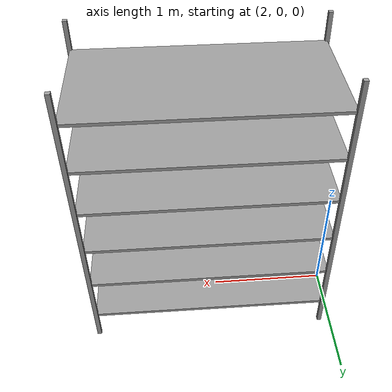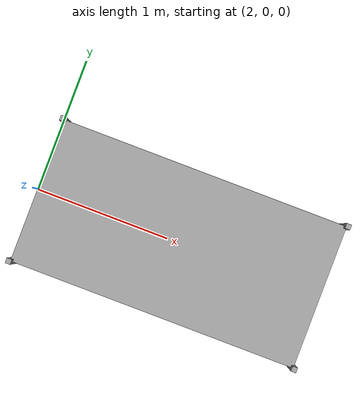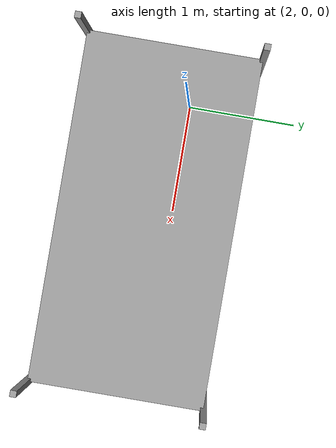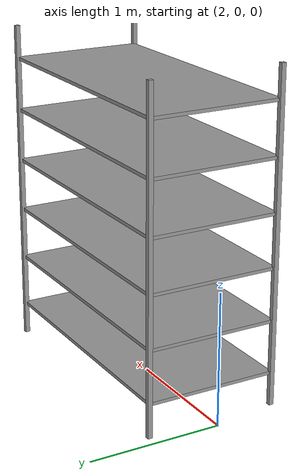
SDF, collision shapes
<sdf version="1.6">
 <model name="shelves">
  <model name="shelf_4">
   <link name="link_1">
    <inertial>
     <mass>1</mass>
     <inertia>
      <ixx>0.166667</ixx>
      <ixy>0</ixy>
      <ixz>0</ixz>
      <iyy>0.166667</iyy>
      <iyz>0</iyz>
      <izz>0.166667</izz>
     </inertia>
    </inertial>
    <visual name="ModelPreview_2::link_1::visual_6">
     <pose>1 0.5 0 0 -0 0</pose>
     <geometry><mesh><uri>model://shelf/model/2-5mDirek.stl</uri><scale>0.001 0.001 0.001</scale></mesh></geometry>
     <material>
      <lighting>1</lighting>
      <script><uri>file://media/materials/scripts/gazebo.material</uri><name>Gazebo/Grey</name></script>
      <shader type="vertex"><normal_map>__default__</normal_map></shader>
      <ambient>0.3 0.3 0.3 1</ambient>
      <diffuse>0.7 0.7 0.7 1</diffuse>
      <specular>0.01 0.01 0.01 1</specular>
      <emissive>0 0 0 1</emissive>
     </material>
    </visual>
    <visual name="ModelPreview_2::link_1::visual_7">
     <pose>-1 0.5 0 0 -0 0</pose>
     <geometry><mesh><uri>model://shelf/model/2-5mDirek.stl</uri><scale>0.001 0.001 0.001</scale></mesh></geometry>
     <material>
      <lighting>1</lighting>
      <script><uri>file://media/materials/scripts/gazebo.material</uri><name>Gazebo/Grey</name></script>
      <shader type="vertex"><normal_map>__default__</normal_map></shader>
      <ambient>0.3 0.3 0.3 1</ambient>
      <diffuse>0.7 0.7 0.7 1</diffuse>
      <specular>0.01 0.01 0.01 1</specular>
      <emissive>0 0 0 1</emissive>
     </material>
    </visual>
    <visual name="ModelPreview_2::link_1::visual_4">
     <pose>0 0 1.85 0 -0 0</pose>
     <geometry><box><size>2 1 0.025</size></box></geometry>
     <material>
      <lighting>1</lighting>
      <script><uri>file://media/materials/scripts/gazebo.material</uri><name>Gazebo/WoodFloor</name></script>
      <shader type="vertex"><normal_map>__default__</normal_map></shader>
      <ambient>0.3 0.3 0.3 1</ambient>
      <diffuse>0.7 0.7 0.7 1</diffuse>
      <specular>0.01 0.01 0.01 1</specular>
      <emissive>0 0 0 1</emissive>
     </material>
    </visual>
    <visual name="ModelPreview_2::link_1::visual_5">
     <pose>0 0 2.25 0 -0 0</pose>
     <geometry><box><size>2 1 0.025</size></box></geometry>
     <material>
      <lighting>1</lighting>
      <script><uri>file://media/materials/scripts/gazebo.material</uri><name>Gazebo/WoodFloor</name></script>
      <shader type="vertex"><normal_map>__default__</normal_map></shader>
      <ambient>0.3 0.3 0.3 1</ambient>
      <diffuse>0.7 0.7 0.7 1</diffuse>
      <specular>0.01 0.01 0.01 1</specular>
      <emissive>0 0 0 1</emissive>
     </material>
    </visual>
    <visual name="ModelPreview_2::link_1::visual_3">
     <pose>0 0 1.45 0 -0 0</pose>
     <geometry><box><size>2 1 0.025</size></box></geometry>
     <material>
      <lighting>1</lighting>
      <script><uri>file://media/materials/scripts/gazebo.material</uri><name>Gazebo/WoodFloor</name></script>
      <shader type="vertex"><normal_map>__default__</normal_map></shader>
      <ambient>0.3 0.3 0.3 1</ambient>
      <diffuse>0.7 0.7 0.7 1</diffuse>
      <specular>0.01 0.01 0.01 1</specular>
      <emissive>0 0 0 1</emissive>
     </material>
    </visual>
    <visual name="ModelPreview_2::link_1::visual_1">
     <pose>0 0 0.65 0 -0 0</pose>
     <geometry><box><size>2 1 0.025</size></box></geometry>
     <material>
      <lighting>1</lighting>
      <script><uri>file://media/materials/scripts/gazebo.material</uri><name>Gazebo/WoodFloor</name></script>
      <shader type="vertex"><normal_map>__default__</normal_map></shader>
      <ambient>0.3 0.3 0.3 1</ambient>
      <diffuse>0.7 0.7 0.7 1</diffuse>
      <specular>0.01 0.01 0.01 1</specular>
      <emissive>0 0 0 1</emissive>
     </material>
    </visual>
    <visual name="visual">
     <pose>0 0 0.25 0 -0 0</pose>
     <geometry><box><size>2 1 0.025</size></box></geometry>
     <material>
      <lighting>1</lighting>
      <script><uri>file://media/materials/scripts/gazebo.material</uri><name>Gazebo/WoodFloor</name></script>
      <shader type="vertex"><normal_map>__default__</normal_map></shader>
      <ambient>0.3 0.3 0.3 1</ambient>
      <diffuse>0.7 0.7 0.7 1</diffuse>
      <specular>0.01 0.01 0.01 1</specular>
      <emissive>0 0 0 1</emissive>
     </material>
    </visual>
    <visual name="ModelPreview_2::link_1::visual_2">
     <pose>0 0 1.05 0 -0 0</pose>
     <geometry><box><size>2 1 0.025</size></box></geometry>
     <material>
      <lighting>1</lighting>
      <script><uri>file://media/materials/scripts/gazebo.material</uri><name>Gazebo/WoodFloor</name></script>
      <shader type="vertex"><normal_map>__default__</normal_map></shader>
      <ambient>0.3 0.3 0.3 1</ambient>
      <diffuse>0.7 0.7 0.7 1</diffuse>
      <specular>0.01 0.01 0.01 1</specular>
      <emissive>0 0 0 1</emissive>
     </material>
    </visual>
    <visual name="ModelPreview_2::link_1::visual_8">
     <pose>1 -0.5 0 0 -0 0</pose>
     <geometry><mesh><uri>model://shelf/model/2-5mDirek.stl</uri><scale>0.001 0.001 0.001</scale></mesh></geometry>
     <material>
      <lighting>1</lighting>
      <script><uri>file://media/materials/scripts/gazebo.material</uri><name>Gazebo/Grey</name></script>
      <shader type="vertex"><normal_map>__default__</normal_map></shader>
      <ambient>0.3 0.3 0.3 1</ambient>
      <diffuse>0.7 0.7 0.7 1</diffuse>
      <specular>0.01 0.01 0.01 1</specular>
      <emissive>0 0 0 1</emissive>
     </material>
    </visual>
    <visual name="ModelPreview_2::link_1::visual_9">
     <pose>-1 -0.5 0 0 -0 0</pose>
     <geometry><mesh><uri>model://shelf/model/2-5mDirek.stl</uri><scale>0.001 0.001 0.001</scale></mesh></geometry>
     <material>
      <lighting>1</lighting>
      <script><uri>file://media/materials/scripts/gazebo.material</uri><name>Gazebo/Grey</name></script>
      <shader type="vertex"><normal_map>__default__</normal_map></shader>
      <ambient>0.3 0.3 0.3 1</ambient>
      <diffuse>0.7 0.7 0.7 1</diffuse>
      <specular>0.01 0.01 0.01 1</specular>
      <emissive>0 0 0 1</emissive>
     </material>
    </visual>
    <collision name="collision_7">
     <pose>1 -0.5 1.25 0 -0 0</pose>
     <geometry><box><size>0.035 0.035 2.5</size></box></geometry>
     <surface>
      <friction>
       <ode><mu>1</mu><mu2>1</mu2><fdir1>0 0 0</fdir1><slip1>0</slip1><slip2>0</slip2></ode>
       <torsional>
        <coefficient>1</coefficient>
        <patch_radius>0</patch_radius>
        <surface_radius>0</surface_radius>
        <use_patch_radius>1</use_patch_radius>
        <ode><slip>0</slip></ode>
       </torsional>
      </friction>
      <bounce><restitution_coefficient>0</restitution_coefficient><threshold>1e+06</threshold></bounce>
      <contact>
       <collide_without_contact>0</collide_without_contact>
       <collide_without_contact_bitmask>1</collide_without_contact_bitmask>
       <collide_bitmask>1</collide_bitmask>
       <ode>
        <soft_cfm>0</soft_cfm>
        <soft_erp>0.2</soft_erp>
        <kp>1e+13</kp>
        <kd>1</kd>
        <max_vel>0.01</max_vel>
        <min_depth>0</min_depth>
       </ode>
       <bullet>
        <split_impulse>1</split_impulse>
        <split_impulse_penetration_threshold>-0.01</split_impulse_penetration_threshold>
        <soft_cfm>0</soft_cfm>
        <soft_erp>0.2</soft_erp>
        <kp>1e+13</kp>
        <kd>1</kd>
       </bullet>
      </contact>
     </surface>
    </collision>
    <collision name="collision_6">
     <pose>1 0.5 1.25 0 -0 0</pose>
     <geometry><box><size>0.035 0.035 2.5</size></box></geometry>
     <surface>
      <friction>
       <ode><mu>1</mu><mu2>1</mu2><fdir1>0 0 0</fdir1><slip1>0</slip1><slip2>0</slip2></ode>
       <torsional>
        <coefficient>1</coefficient>
        <patch_radius>0</patch_radius>
        <surface_radius>0</surface_radius>
        <use_patch_radius>1</use_patch_radius>
        <ode><slip>0</slip></ode>
       </torsional>
      </friction>
      <bounce><restitution_coefficient>0</restitution_coefficient><threshold>1e+06</threshold></bounce>
      <contact>
       <collide_without_contact>0</collide_without_contact>
       <collide_without_contact_bitmask>1</collide_without_contact_bitmask>
       <collide_bitmask>1</collide_bitmask>
       <ode>
        <soft_cfm>0</soft_cfm>
        <soft_erp>0.2</soft_erp>
        <kp>1e+13</kp>
        <kd>1</kd>
        <max_vel>0.01</max_vel>
        <min_depth>0</min_depth>
       </ode>
       <bullet>
        <split_impulse>1</split_impulse>
        <split_impulse_penetration_threshold>-0.01</split_impulse_penetration_threshold>
        <soft_cfm>0</soft_cfm>
        <soft_erp>0.2</soft_erp>
        <kp>1e+13</kp>
        <kd>1</kd>
       </bullet>
      </contact>
     </surface>
    </collision>
    <collision name="collision_2">
     <pose>0 0 1.05 0 -0 0</pose>
     <geometry><box><size>2 1 0.025</size></box></geometry>
     <surface>
      <friction>
       <ode><mu>1</mu><mu2>1</mu2><fdir1>0 0 0</fdir1><slip1>0</slip1><slip2>0</slip2></ode>
       <torsional>
        <coefficient>1</coefficient>
        <patch_radius>0</patch_radius>
        <surface_radius>0</surface_radius>
        <use_patch_radius>1</use_patch_radius>
        <ode><slip>0</slip></ode>
       </torsional>
      </friction>
      <bounce><restitution_coefficient>0</restitution_coefficient><threshold>1e+06</threshold></bounce>
      <contact>
       <collide_without_contact>0</collide_without_contact>
       <collide_without_contact_bitmask>1</collide_without_contact_bitmask>
       <collide_bitmask>1</collide_bitmask>
       <ode>
        <soft_cfm>0</soft_cfm>
        <soft_erp>0.2</soft_erp>
        <kp>1e+13</kp>
        <kd>1</kd>
        <max_vel>0.01</max_vel>
        <min_depth>0</min_depth>
       </ode>
       <bullet>
        <split_impulse>1</split_impulse>
        <split_impulse_penetration_threshold>-0.01</split_impulse_penetration_threshold>
        <soft_cfm>0</soft_cfm>
        <soft_erp>0.2</soft_erp>
        <kp>1e+13</kp>
        <kd>1</kd>
       </bullet>
      </contact>
     </surface>
    </collision>
    <collision name="collision_8">
     <pose>-1 0.5 1.25 0 -0 0</pose>
     <geometry><box><size>0.035 0.035 2.5</size></box></geometry>
     <surface>
      <friction>
       <ode><mu>1</mu><mu2>1</mu2><fdir1>0 0 0</fdir1><slip1>0</slip1><slip2>0</slip2></ode>
       <torsional>
        <coefficient>1</coefficient>
        <patch_radius>0</patch_radius>
        <surface_radius>0</surface_radius>
        <use_patch_radius>1</use_patch_radius>
        <ode><slip>0</slip></ode>
       </torsional>
      </friction>
      <bounce><restitution_coefficient>0</restitution_coefficient><threshold>1e+06</threshold></bounce>
      <contact>
       <collide_without_contact>0</collide_without_contact>
       <collide_without_contact_bitmask>1</collide_without_contact_bitmask>
       <collide_bitmask>1</collide_bitmask>
       <ode>
        <soft_cfm>0</soft_cfm>
        <soft_erp>0.2</soft_erp>
        <kp>1e+13</kp>
        <kd>1</kd>
        <max_vel>0.01</max_vel>
        <min_depth>0</min_depth>
       </ode>
       <bullet>
        <split_impulse>1</split_impulse>
        <split_impulse_penetration_threshold>-0.01</split_impulse_penetration_threshold>
        <soft_cfm>0</soft_cfm>
        <soft_erp>0.2</soft_erp>
        <kp>1e+13</kp>
        <kd>1</kd>
       </bullet>
      </contact>
     </surface>
    </collision>
    <collision name="collision_4">
     <pose>0 0 1.85 0 -0 0</pose>
     <geometry><box><size>2 1 0.025</size></box></geometry>
     <surface>
      <friction>
       <ode><mu>1</mu><mu2>1</mu2><fdir1>0 0 0</fdir1><slip1>0</slip1><slip2>0</slip2></ode>
       <torsional>
        <coefficient>1</coefficient>
        <patch_radius>0</patch_radius>
        <surface_radius>0</surface_radius>
        <use_patch_radius>1</use_patch_radius>
        <ode><slip>0</slip></ode>
       </torsional>
      </friction>
      <bounce><restitution_coefficient>0</restitution_coefficient><threshold>1e+06</threshold></bounce>
      <contact>
       <collide_without_contact>0</collide_without_contact>
       <collide_without_contact_bitmask>1</collide_without_contact_bitmask>
       <collide_bitmask>1</collide_bitmask>
       <ode>
        <soft_cfm>0</soft_cfm>
        <soft_erp>0.2</soft_erp>
        <kp>1e+13</kp>
        <kd>1</kd>
        <max_vel>0.01</max_vel>
        <min_depth>0</min_depth>
       </ode>
       <bullet>
        <split_impulse>1</split_impulse>
        <split_impulse_penetration_threshold>-0.01</split_impulse_penetration_threshold>
        <soft_cfm>0</soft_cfm>
        <soft_erp>0.2</soft_erp>
        <kp>1e+13</kp>
        <kd>1</kd>
       </bullet>
      </contact>
     </surface>
    </collision>
    <collision name="collision_1">
     <pose>0 0 0.65 0 -0 0</pose>
     <geometry><box><size>2 1 0.025</size></box></geometry>
     <surface>
      <friction>
       <ode><mu>1</mu><mu2>1</mu2><fdir1>0 0 0</fdir1><slip1>0</slip1><slip2>0</slip2></ode>
       <torsional>
        <coefficient>1</coefficient>
        <patch_radius>0</patch_radius>
        <surface_radius>0</surface_radius>
        <use_patch_radius>1</use_patch_radius>
        <ode><slip>0</slip></ode>
       </torsional>
      </friction>
      <bounce><restitution_coefficient>0</restitution_coefficient><threshold>1e+06</threshold></bounce>
      <contact>
       <collide_without_contact>0</collide_without_contact>
       <collide_without_contact_bitmask>1</collide_without_contact_bitmask>
       <collide_bitmask>1</collide_bitmask>
       <ode>
        <soft_cfm>0</soft_cfm>
        <soft_erp>0.2</soft_erp>
        <kp>1e+13</kp>
        <kd>1</kd>
        <max_vel>0.01</max_vel>
        <min_depth>0</min_depth>
       </ode>
       <bullet>
        <split_impulse>1</split_impulse>
        <split_impulse_penetration_threshold>-0.01</split_impulse_penetration_threshold>
        <soft_cfm>0</soft_cfm>
        <soft_erp>0.2</soft_erp>
        <kp>1e+13</kp>
        <kd>1</kd>
       </bullet>
      </contact>
     </surface>
    </collision>
    <collision name="collision_3">
     <pose>0 0 1.45 0 -0 0</pose>
     <geometry><box><size>2 1 0.025</size></box></geometry>
     <surface>
      <friction>
       <ode><mu>1</mu><mu2>1</mu2><fdir1>0 0 0</fdir1><slip1>0</slip1><slip2>0</slip2></ode>
       <torsional>
        <coefficient>1</coefficient>
        <patch_radius>0</patch_radius>
        <surface_radius>0</surface_radius>
        <use_patch_radius>1</use_patch_radius>
        <ode><slip>0</slip></ode>
       </torsional>
      </friction>
      <bounce><restitution_coefficient>0</restitution_coefficient><threshold>1e+06</threshold></bounce>
      <contact>
       <collide_without_contact>0</collide_without_contact>
       <collide_without_contact_bitmask>1</collide_without_contact_bitmask>
       <collide_bitmask>1</collide_bitmask>
       <ode>
        <soft_cfm>0</soft_cfm>
        <soft_erp>0.2</soft_erp>
        <kp>1e+13</kp>
        <kd>1</kd>
        <max_vel>0.01</max_vel>
        <min_depth>0</min_depth>
       </ode>
       <bullet>
        <split_impulse>1</split_impulse>
        <split_impulse_penetration_threshold>-0.01</split_impulse_penetration_threshold>
        <soft_cfm>0</soft_cfm>
        <soft_erp>0.2</soft_erp>
        <kp>1e+13</kp>
        <kd>1</kd>
       </bullet>
      </contact>
     </surface>
    </collision>
    <collision name="collision_5">
     <pose>0 0 2.25 0 -0 0</pose>
     <geometry><box><size>2 1 0.025</size></box></geometry>
     <surface>
      <friction>
       <ode><mu>1</mu><mu2>1</mu2><fdir1>0 0 0</fdir1><slip1>0</slip1><slip2>0</slip2></ode>
       <torsional>
        <coefficient>1</coefficient>
        <patch_radius>0</patch_radius>
        <surface_radius>0</surface_radius>
        <use_patch_radius>1</use_patch_radius>
        <ode><slip>0</slip></ode>
       </torsional>
      </friction>
      <bounce><restitution_coefficient>0</restitution_coefficient><threshold>1e+06</threshold></bounce>
      <contact>
       <collide_without_contact>0</collide_without_contact>
       <collide_without_contact_bitmask>1</collide_without_contact_bitmask>
       <collide_bitmask>1</collide_bitmask>
       <ode>
        <soft_cfm>0</soft_cfm>
        <soft_erp>0.2</soft_erp>
        <kp>1e+13</kp>
        <kd>1</kd>
        <max_vel>0.01</max_vel>
        <min_depth>0</min_depth>
       </ode>
       <bullet>
        <split_impulse>1</split_impulse>
        <split_impulse_penetration_threshold>-0.01</split_impulse_penetration_threshold>
        <soft_cfm>0</soft_cfm>
        <soft_erp>0.2</soft_erp>
        <kp>1e+13</kp>
        <kd>1</kd>
       </bullet>
      </contact>
     </surface>
    </collision>
    <collision name="collision">
     <pose>0 0 0.25 0 -0 0</pose>
     <geometry><box><size>2 1 0.025</size></box></geometry>
     <surface>
      <friction>
       <ode><mu>1</mu><mu2>1</mu2><fdir1>0 0 0</fdir1><slip1>0</slip1><slip2>0</slip2></ode>
       <torsional>
        <coefficient>1</coefficient>
        <patch_radius>0</patch_radius>
        <surface_radius>0</surface_radius>
        <use_patch_radius>1</use_patch_radius>
        <ode><slip>0</slip></ode>
       </torsional>
      </friction>
      <bounce><restitution_coefficient>0</restitution_coefficient><threshold>1e+06</threshold></bounce>
      <contact>
       <collide_without_contact>0</collide_without_contact>
       <collide_without_contact_bitmask>1</collide_without_contact_bitmask>
       <collide_bitmask>1</collide_bitmask>
       <ode>
        <soft_cfm>0</soft_cfm>
        <soft_erp>0.2</soft_erp>
        <kp>1e+13</kp>
        <kd>1</kd>
        <max_vel>0.01</max_vel>
        <min_depth>0</min_depth>
       </ode>
       <bullet>
        <split_impulse>1</split_impulse>
        <split_impulse_penetration_threshold>-0.01</split_impulse_penetration_threshold>
        <soft_cfm>0</soft_cfm>
        <soft_erp>0.2</soft_erp>
        <kp>1e+13</kp>
        <kd>1</kd>
       </bullet>
      </contact>
     </surface>
    </collision>
    <collision name="collision_9">
     <pose>-1 -0.5 1.25 0 -0 0</pose>
     <geometry><box><size>0.035 0.035 2.5</size></box></geometry>
     <surface>
      <friction>
       <ode><mu>1</mu><mu2>1</mu2><fdir1>0 0 0</fdir1><slip1>0</slip1><slip2>0</slip2></ode>
       <torsional>
        <coefficient>1</coefficient>
        <patch_radius>0</patch_radius>
        <surface_radius>0</surface_radius>
        <use_patch_radius>1</use_patch_radius>
        <ode><slip>0</slip></ode>
       </torsional>
      </friction>
      <bounce><restitution_coefficient>0</restitution_coefficient><threshold>1e+06</threshold></bounce>
      <contact>
       <collide_without_contact>0</collide_without_contact>
       <collide_without_contact_bitmask>1</collide_without_contact_bitmask>
       <collide_bitmask>1</collide_bitmask>
       <ode>
        <soft_cfm>0</soft_cfm>
        <soft_erp>0.2</soft_erp>
        <kp>1e+13</kp>
        <kd>1</kd>
        <max_vel>0.01</max_vel>
        <min_depth>0</min_depth>
       </ode>
       <bullet>
        <split_impulse>1</split_impulse>
        <split_impulse_penetration_threshold>-0.01</split_impulse_penetration_threshold>
        <soft_cfm>0</soft_cfm>
        <soft_erp>0.2</soft_erp>
        <kp>1e+13</kp>
        <kd>1</kd>
       </bullet>
      </contact>
     </surface>
    </collision>
   </link>
   <static>1</static>
   <pose>3.0915 -0.001777 0 0 -0 0</pose>
  </model>
  <static>1</static>
 </model>
</sdf>
